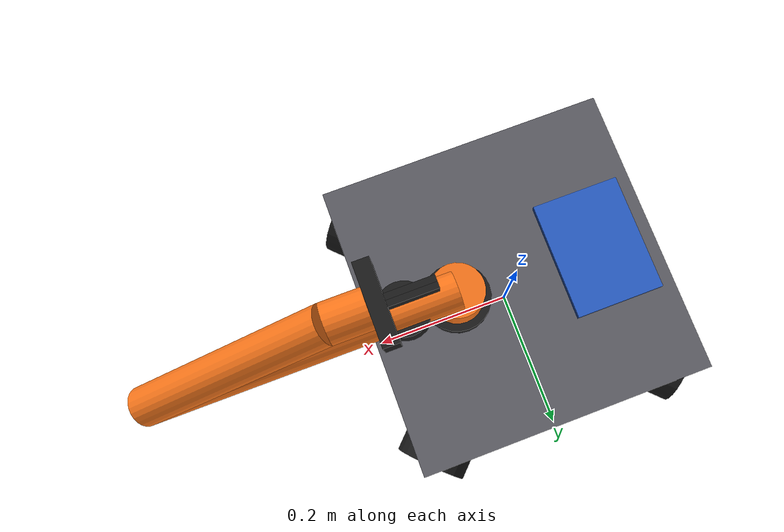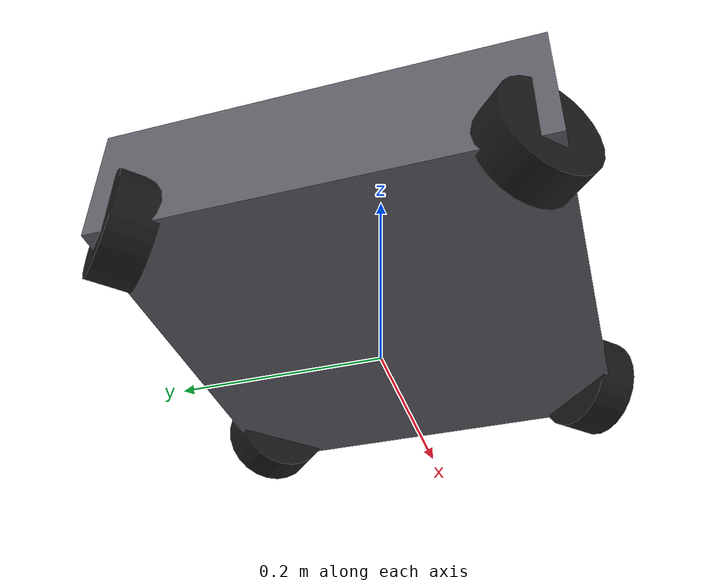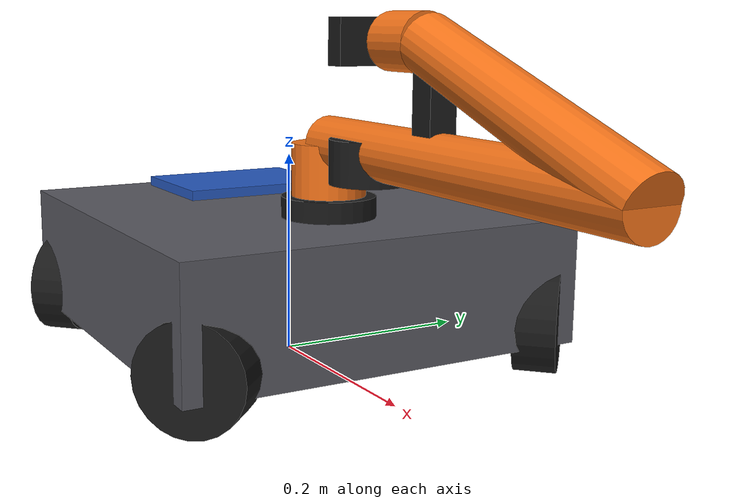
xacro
<?xml version="1.0"?>
<!--
  Robot para Gazebo Harmonic: misma URDF que el robot real + sensores y plugins.
    xacro amr_sim.urdf.xacro optical_frames:=true
-->
<robot name="omrover_mm" xmlns:xacro="http://www.ros.org/wiki/xacro">
  <xacro:include filename="$(find amr_description)/urdf/amr.urdf.xacro"/>
  <xacro:include filename="$(find amr_gazebo)/urdf/amr.gazebo.xacro"/>
</robot>

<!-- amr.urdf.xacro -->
<robot name="omrover_mm" xmlns:xacro="http://www.ros.org/wiki/xacro">
  <xacro:arg name="optical_frames" default="false"/>
  <xacro:arg name="use_ros2_control" default="false"/>
  <xacro:arg name="ros2_control_hardware" default="mock"/>
  <!-- false en Gazebo: DART no soporta mimic; gz_mcu comanda ambos dedos. -->
  <xacro:arg name="gripper_mimic" default="true"/>

  <xacro:include filename="$(find amr_description)/urdf/params.xacro"/>
  <xacro:include filename="$(find amr_description)/urdf/macros.xacro"/>
  <xacro:include filename="$(find amr_description)/urdf/base.xacro"/>
  <xacro:include filename="$(find amr_description)/urdf/arm.xacro"/>
  <xacro:include filename="$(find amr_description)/urdf/gripper.xacro"/>
  <xacro:include filename="$(find amr_description)/urdf/camera.xacro"/>
  <xacro:include filename="$(find amr_description)/urdf/amr.ros2_control.xacro"/>

  <xacro:omni_base/>
  <xacro:arm4dof parent="base_link"/>
  <xacro:servo_gripper parent="tool0"/>
  <xacro:eye_in_hand_camera parent="arm_link_4" optical_frames="$(arg optical_frames)"/>

  <xacro:if value="$(arg use_ros2_control)">
    <xacro:arm_ros2_control hardware="$(arg ros2_control_hardware)"/>
  </xacro:if>
</robot>

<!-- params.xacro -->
<!--
  Parámetros geométricos del Mobile Manipulator.
  Valores marcados TBD son provisionales: sustituir con las medidas reales
  (o con el export de SolidWorks) sin cambiar los nombres de frames.
-->
<robot xmlns:xacro="http://www.ros.org/wiki/xacro">

  <!-- ===================== Base omnidireccional (X a 45 deg) ===================== -->
  <xacro:property name="base_length" value="0.40"/>          <!-- TBD -->
  <xacro:property name="base_width" value="0.40"/>           <!-- TBD -->
  <xacro:property name="base_height" value="0.12"/>          <!-- TBD -->
  <xacro:property name="base_mass" value="12.0"/>            <!-- TBD -->
  <xacro:property name="wheel_radius" value="0.050"/>        <!-- TBD: radio rueda omni -->
  <xacro:property name="wheel_width" value="0.040"/>         <!-- TBD -->
  <xacro:property name="wheel_mass" value="0.40"/>           <!-- TBD -->
  <!-- Distancia centro del robot -> centro de rueda (L de la cinemática). TBD -->
  <xacro:property name="wheel_center_distance" value="0.25"/>
  <!-- Ángulo de cada rueda alrededor del centro (X config). Debe coincidir con
       AMR_LLC/ros2/amr_mqtt_bridge/config/bridge.yaml (wheel_angles_deg). -->
  <xacro:property name="wheel_angle_fl" value="${radians(45)}"/>
  <xacro:property name="wheel_angle_rl" value="${radians(135)}"/>
  <xacro:property name="wheel_angle_rr" value="${radians(225)}"/>
  <xacro:property name="wheel_angle_fr" value="${radians(315)}"/>

  <!-- ===================== Sensores ===================== -->
  <!-- RPLIDAR A1M8 -->
  <xacro:property name="lidar_x" value="0.15"/>              <!-- TBD -->
  <xacro:property name="lidar_y" value="0.0"/>
  <xacro:property name="lidar_z" value="${base_height + 0.06}"/>  <!-- TBD, sobre base_link -->
  <!-- BNO080 -->
  <xacro:property name="imu_x" value="0.0"/>                 <!-- TBD -->
  <xacro:property name="imu_y" value="0.0"/>
  <xacro:property name="imu_z" value="0.03"/>

  <!-- ===================== Brazo 4 DOF (tabla DH de AMR_arm/README.md) ===================== -->
  <xacro:property name="arm_l1" value="${0.031 + 0.03885}"/>
  <xacro:property name="arm_l2" value="0.4"/>
  <xacro:property name="arm_l3" value="0.095"/>
  <xacro:property name="arm_l4" value="0.245"/>
  <xacro:property name="arm_l5" value="0.050"/>
  <xacro:property name="arm_C" value="${sqrt(arm_l3**2 + arm_l4**2)}"/>
  <xacro:property name="arm_phi" value="${acos(arm_l4 / arm_C)}"/>
  <xacro:property name="arm_gamma" value="${pi + arm_phi}"/>
  <!-- Montaje del brazo sobre la base. TBD -->
  <xacro:property name="arm_mount_x" value="0.08"/>
  <xacro:property name="arm_mount_y" value="0.0"/>
  <!-- Cara superior del chasis: el box de base_link va de -0.02 a base_height-0.02. -->
  <xacro:property name="arm_mount_z" value="${base_height - 0.02}"/>
  <!-- Límites articulares provisionales (rad). TBD con los topes mecánicos. -->
  <xacro:property name="arm_q1_min" value="${-pi}"/>
  <xacro:property name="arm_q1_max" value="${pi}"/>
  <xacro:property name="arm_q2_min" value="${-pi/2}"/>
  <xacro:property name="arm_q2_max" value="${pi/2}"/>
  <xacro:property name="arm_q3_min" value="${-2.5}"/>
  <xacro:property name="arm_q3_max" value="${2.5}"/>
  <xacro:property name="arm_q4_min" value="${-2.5}"/>
  <xacro:property name="arm_q4_max" value="${2.5}"/>
  <xacro:property name="arm_effort" value="11.0"/>           <!-- N·m pico GIM6010-8 -->
  <xacro:property name="arm_velocity" value="3.0"/>          <!-- rad/s, TBD -->
  <xacro:property name="arm_link_radius" value="0.025"/>

  <!-- ===================== Gripper (servo PWM) ===================== -->
  <xacro:property name="gripper_finger_travel" value="0.035"/>   <!-- m por dedo, TBD -->
  <xacro:property name="gripper_finger_length" value="0.06"/>

  <!-- ===================== Cámara eye-in-hand (RealSense D435i) ===================== -->
  <!-- Pose provisional de camera_link respecto a arm_link_4; la real sale de la
       calibración hand-eye (AMR_perception/scripts/handeye_calib.py). -->
  <xacro:property name="camera_x" value="0.0"/>
  <xacro:property name="camera_y" value="0.05"/>
  <xacro:property name="camera_z" value="0.0"/>

  <!-- ===================== Bandeja de carga ===================== -->
  <xacro:property name="tray_x" value="-0.12"/>              <!-- TBD -->
  <xacro:property name="tray_z" value="${base_height - 0.02 + 0.005}"/>
</robot>

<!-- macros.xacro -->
<robot xmlns:xacro="http://www.ros.org/wiki/xacro">

  <material name="omr_grey"><color rgba="0.35 0.35 0.38 1.0"/></material>
  <material name="omr_dark"><color rgba="0.10 0.10 0.10 1.0"/></material>
  <material name="omr_orange"><color rgba="0.95 0.45 0.10 1.0"/></material>
  <material name="omr_blue"><color rgba="0.15 0.35 0.75 1.0"/></material>

  <xacro:macro name="box_inertia" params="m x y z">
    <inertia ixx="${m * (y*y + z*z) / 12.0}" ixy="0" ixz="0"
             iyy="${m * (x*x + z*z) / 12.0}" iyz="0"
             izz="${m * (x*x + y*y) / 12.0}"/>
  </xacro:macro>

  <!-- Cilindro con el eje a lo largo de z local. -->
  <xacro:macro name="cylinder_inertia" params="m r h">
    <inertia ixx="${m * (3*r*r + h*h) / 12.0}" ixy="0" ixz="0"
             iyy="${m * (3*r*r + h*h) / 12.0}" iyz="0"
             izz="${m * r * r / 2.0}"/>
  </xacro:macro>
</robot>

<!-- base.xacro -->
<robot xmlns:xacro="http://www.ros.org/wiki/xacro">

  <xacro:macro name="omni_wheel" params="name angle">
    <joint name="wheel_${name}_joint" type="continuous">
      <parent link="base_link"/>
      <child link="wheel_${name}_link"/>
      <origin xyz="${wheel_center_distance * cos(angle)} ${wheel_center_distance * sin(angle)} 0"
              rpy="0 0 ${angle}"/>
      <!-- Eje radial negativo: posición positiva = la rueda empuja al robot en la
           dirección tangencial +u_i (misma convención que omni.py y el MCU). -->
      <axis xyz="-1 0 0"/>
    </joint>
    <link name="wheel_${name}_link">
      <visual>
        <origin xyz="0 0 0" rpy="0 ${pi/2} 0"/>
        <geometry><cylinder radius="${wheel_radius}" length="${wheel_width}"/></geometry>
        <material name="omr_dark"/>
      </visual>
      <collision>
        <!-- Contacto como esfera: evita fricción lateral irreal de un cilindro. -->
        <geometry><sphere radius="${wheel_radius}"/></geometry>
      </collision>
      <inertial>
        <origin xyz="0 0 0" rpy="0 ${pi/2} 0"/>
        <mass value="${wheel_mass}"/>
        <xacro:cylinder_inertia m="${wheel_mass}" r="${wheel_radius}" h="${wheel_width}"/>
      </inertial>
    </link>
  </xacro:macro>

  <xacro:macro name="omni_base">
    <link name="base_footprint"/>

    <joint name="base_footprint_joint" type="fixed">
      <parent link="base_footprint"/>
      <child link="base_link"/>
      <origin xyz="0 0 ${wheel_radius}" rpy="0 0 0"/>
    </joint>

    <link name="base_link">
      <visual>
        <origin xyz="0 0 ${base_height / 2 - 0.02}" rpy="0 0 0"/>
        <geometry><box size="${base_length} ${base_width} ${base_height}"/></geometry>
        <material name="omr_grey"/>
      </visual>
      <collision>
        <origin xyz="0 0 ${base_height / 2 - 0.02}" rpy="0 0 0"/>
        <geometry><box size="${base_length} ${base_width} ${base_height}"/></geometry>
      </collision>
      <inertial>
        <origin xyz="0 0 ${base_height / 2 - 0.02}" rpy="0 0 0"/>
        <mass value="${base_mass}"/>
        <xacro:box_inertia m="${base_mass}" x="${base_length}" y="${base_width}" z="${base_height}"/>
      </inertial>
    </link>

    <xacro:omni_wheel name="fl" angle="${wheel_angle_fl}"/>
    <xacro:omni_wheel name="rl" angle="${wheel_angle_rl}"/>
    <xacro:omni_wheel name="rr" angle="${wheel_angle_rr}"/>
    <xacro:omni_wheel name="fr" angle="${wheel_angle_fr}"/>

    <!-- BNO080 -->
    <joint name="imu_joint" type="fixed">
      <parent link="base_link"/>
      <child link="imu_link"/>
      <origin xyz="${imu_x} ${imu_y} ${imu_z}" rpy="0 0 0"/>
    </joint>
    <link name="imu_link"/>

    <!-- RPLIDAR A1M8 -->
    <joint name="laser_joint" type="fixed">
      <parent link="base_link"/>
      <child link="laser_link"/>
      <origin xyz="${lidar_x} ${lidar_y} ${lidar_z}" rpy="0 0 0"/>
    </joint>
    <link name="laser_link">
      <visual>
        <origin xyz="0 0 -0.02" rpy="0 0 0"/>
        <geometry><cylinder radius="0.035" length="0.04"/></geometry>
        <material name="omr_dark"/>
      </visual>
    </link>

    <!-- Bandeja donde el brazo deposita la pieza durante el transporte -->
    <joint name="tray_joint" type="fixed">
      <parent link="base_link"/>
      <child link="tray_link"/>
      <origin xyz="${tray_x} 0 ${tray_z}" rpy="0 0 0"/>
    </joint>
    <link name="tray_link">
      <visual>
        <geometry><box size="0.12 0.16 0.01"/></geometry>
        <material name="omr_blue"/>
      </visual>
    </link>
  </xacro:macro>
</robot>

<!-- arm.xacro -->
<robot xmlns:xacro="http://www.ros.org/wiki/xacro">

  <!-- Segmento cilíndrico de visualización entre el origen del link y (a, 0, d). -->
  <xacro:macro name="arm_segment_x" params="length">
    <visual>
      <origin xyz="${length / 2} 0 0" rpy="0 ${pi/2} 0"/>
      <geometry><cylinder radius="${arm_link_radius}" length="${fabs(length)}"/></geometry>
      <material name="omr_orange"/>
    </visual>
    <collision>
      <origin xyz="${length / 2} 0 0" rpy="0 ${pi/2} 0"/>
      <geometry><cylinder radius="${arm_link_radius}" length="${fabs(length)}"/></geometry>
    </collision>
  </xacro:macro>

  <xacro:macro name="arm_inertial" params="mass">
    <inertial>
      <mass value="${mass}"/>
      <inertia ixx="0.001" ixy="0" ixz="0" iyy="0.001" iyz="0" izz="0.001"/>
    </inertial>
  </xacro:macro>

  <xacro:macro name="arm4dof" params="parent">
    <joint name="arm_mount_joint" type="fixed">
      <parent link="${parent}"/>
      <child link="arm_base_link"/>
      <origin xyz="${arm_mount_x} ${arm_mount_y} ${arm_mount_z}" rpy="0 0 0"/>
    </joint>
    <link name="arm_base_link">
      <visual>
        <origin xyz="0 0 0.01" rpy="0 0 0"/>
        <geometry><cylinder radius="0.045" length="0.02"/></geometry>
        <material name="omr_dark"/>
      </visual>
    </link>

    <!-- Fila 1: theta=q1, d=l1, a=0, alpha=pi/2 -->
    <joint name="arm_joint_1" type="revolute">
      <parent link="arm_base_link"/>
      <child link="arm_link_1"/>
      <origin xyz="0 0 0" rpy="0 0 0"/>
      <axis xyz="0 0 1"/>
      <limit lower="${arm_q1_min}" upper="${arm_q1_max}" effort="${arm_effort}" velocity="${arm_velocity}"/>
    </joint>
    <link name="arm_link_1">
      <visual>
        <origin xyz="0 0 ${arm_l1 / 2}" rpy="0 0 0"/>
        <geometry><cylinder radius="${arm_link_radius * 1.4}" length="${arm_l1}"/></geometry>
        <material name="omr_orange"/>
      </visual>
      <collision>
        <origin xyz="0 0 ${arm_l1 / 2}" rpy="0 0 0"/>
        <geometry><cylinder radius="${arm_link_radius * 1.4}" length="${arm_l1}"/></geometry>
      </collision>
      <xacro:arm_inertial mass="0.6"/>
    </link>

    <!-- Fila 2: theta=q2, d=0, a=l2, alpha=0 -->
    <joint name="arm_joint_2" type="revolute">
      <parent link="arm_link_1"/>
      <child link="arm_link_2"/>
      <origin xyz="0 0 ${arm_l1}" rpy="${pi/2} 0 0"/>
      <axis xyz="0 0 1"/>
      <limit lower="${arm_q2_min}" upper="${arm_q2_max}" effort="${arm_effort}" velocity="${arm_velocity}"/>
    </joint>
    <link name="arm_link_2">
      <xacro:arm_segment_x length="${arm_l2}"/>
      <xacro:arm_inertial mass="0.8"/>
    </link>

    <!-- Fila 3: theta=q3-phi, d=0, a=-C, alpha=0 -->
    <joint name="arm_joint_3" type="revolute">
      <parent link="arm_link_2"/>
      <child link="arm_link_3"/>
      <origin xyz="${arm_l2} 0 0" rpy="0 0 ${-arm_phi}"/>
      <axis xyz="0 0 1"/>
      <limit lower="${arm_q3_min}" upper="${arm_q3_max}" effort="${arm_effort}" velocity="${arm_velocity}"/>
    </joint>
    <link name="arm_link_3">
      <xacro:arm_segment_x length="${-arm_C}"/>
      <xacro:arm_inertial mass="0.5"/>
    </link>

    <!-- Fila 4: theta=q4+gamma, d=0, a=l5, alpha=0 -->
    <joint name="arm_joint_4" type="revolute">
      <parent link="arm_link_3"/>
      <child link="arm_link_4"/>
      <origin xyz="${-arm_C} 0 0" rpy="0 0 ${arm_gamma}"/>
      <axis xyz="0 0 1"/>
      <limit lower="${arm_q4_min}" upper="${arm_q4_max}" effort="${arm_effort}" velocity="${arm_velocity}"/>
    </joint>
    <link name="arm_link_4">
      <xacro:arm_segment_x length="${arm_l5}"/>
      <xacro:arm_inertial mass="0.3"/>
    </link>

    <!-- Frame DH 4: TCP de la herramienta. x = dirección de aproximación,
         z = eje de las juntas 2..4 (normal al plano del brazo). -->
    <joint name="tool0_joint" type="fixed">
      <parent link="arm_link_4"/>
      <child link="tool0"/>
      <origin xyz="${arm_l5} 0 0" rpy="0 0 0"/>
    </joint>
    <link name="tool0"/>
  </xacro:macro>
</robot>

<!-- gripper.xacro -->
<robot xmlns:xacro="http://www.ros.org/wiki/xacro">

  <xacro:macro name="gripper_finger" params="side sign">
    <link name="gripper_finger_${side}_link">
      <visual>
        <origin xyz="${gripper_finger_length / 2} 0 0" rpy="0 0 0"/>
        <geometry><box size="${gripper_finger_length} 0.02 0.008"/></geometry>
        <material name="omr_dark"/>
      </visual>
      <collision>
        <origin xyz="${gripper_finger_length / 2} 0 0" rpy="0 0 0"/>
        <geometry><box size="${gripper_finger_length} 0.02 0.008"/></geometry>
      </collision>
      <inertial>
        <mass value="0.02"/>
        <inertia ixx="1e-5" ixy="0" ixz="0" iyy="1e-5" iyz="0" izz="1e-5"/>
      </inertial>
    </link>
  </xacro:macro>

  <xacro:macro name="servo_gripper" params="parent">
    <joint name="gripper_base_joint" type="fixed">
      <parent link="${parent}"/>
      <child link="gripper_base_link"/>
      <origin xyz="0 0 0" rpy="0 0 0"/>
    </joint>
    <link name="gripper_base_link">
      <visual>
        <origin xyz="0.01 0 0" rpy="0 0 0"/>
        <geometry><box size="0.02 0.04 ${2 * gripper_finger_travel + 0.03}"/></geometry>
        <material name="omr_dark"/>
      </visual>
    </link>

    <xacro:gripper_finger side="left" sign="1"/>
    <xacro:gripper_finger side="right" sign="-1"/>

    <joint name="gripper_finger_joint" type="prismatic">
      <parent link="gripper_base_link"/>
      <child link="gripper_finger_left_link"/>
      <origin xyz="0.02 0 0.004" rpy="0 0 0"/>
      <axis xyz="0 0 1"/>
      <limit lower="0.0" upper="${gripper_finger_travel}" effort="20" velocity="0.1"/>
    </joint>
    <joint name="gripper_finger_right_joint" type="prismatic">
      <parent link="gripper_base_link"/>
      <child link="gripper_finger_right_link"/>
      <origin xyz="0.02 0 -0.004" rpy="0 0 0"/>
      <axis xyz="0 0 -1"/>
      <limit lower="0.0" upper="${gripper_finger_travel}" effort="20" velocity="0.1"/>
      <xacro:if value="$(arg gripper_mimic)">
        <mimic joint="gripper_finger_joint" multiplier="1" offset="0"/>
      </xacro:if>
    </joint>

    <!-- Punto de agarre entre los dedos -->
    <joint name="gripper_tcp_joint" type="fixed">
      <parent link="gripper_base_link"/>
      <child link="gripper_tcp"/>
      <origin xyz="${0.02 + gripper_finger_length * 0.75} 0 0" rpy="0 0 0"/>
    </joint>
    <link name="gripper_tcp"/>
  </xacro:macro>
</robot>

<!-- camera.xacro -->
<robot xmlns:xacro="http://www.ros.org/wiki/xacro">

  <xacro:macro name="eye_in_hand_camera" params="parent optical_frames">
    <joint name="camera_joint" type="fixed">
      <parent link="${parent}"/>
      <child link="camera_link"/>
      <origin xyz="${camera_x} ${camera_y} ${camera_z}" rpy="0 0 0"/>
    </joint>
    <link name="camera_link">
      <visual>
        <origin xyz="-0.0125 0 0" rpy="0 0 0"/>
        <geometry><box size="0.025 0.090 0.025"/></geometry>
        <material name="omr_dark"/>
      </visual>
      <collision>
        <origin xyz="-0.0125 0 0" rpy="0 0 0"/>
        <geometry><box size="0.025 0.090 0.025"/></geometry>
      </collision>
      <inertial>
        <mass value="0.072"/>
        <inertia ixx="5e-5" ixy="0" ixz="0" iyy="1e-5" iyz="0" izz="5e-5"/>
      </inertial>
    </link>

    <xacro:if value="${optical_frames}">
      <joint name="camera_color_joint" type="fixed">
        <parent link="camera_link"/>
        <child link="camera_color_frame"/>
        <origin xyz="0 0.015 0" rpy="0 0 0"/>
      </joint>
      <link name="camera_color_frame"/>
      <joint name="camera_color_optical_joint" type="fixed">
        <parent link="camera_color_frame"/>
        <child link="camera_color_optical_frame"/>
        <origin xyz="0 0 0" rpy="${-pi/2} 0 ${-pi/2}"/>
      </joint>
      <link name="camera_color_optical_frame"/>
      <!-- Depth alineado a color comparte el frame óptico de color. -->
    </xacro:if>
  </xacro:macro>
</robot>
